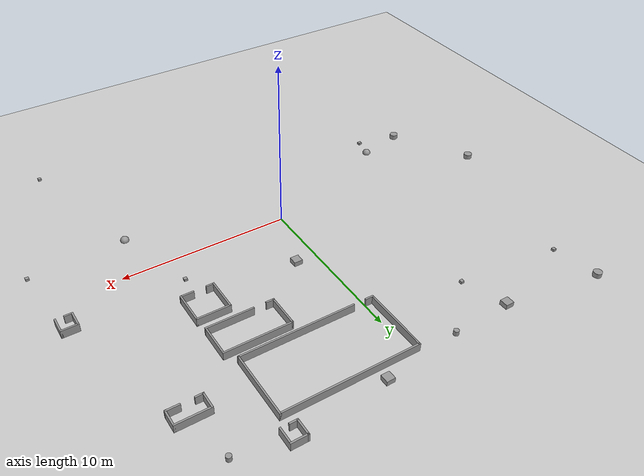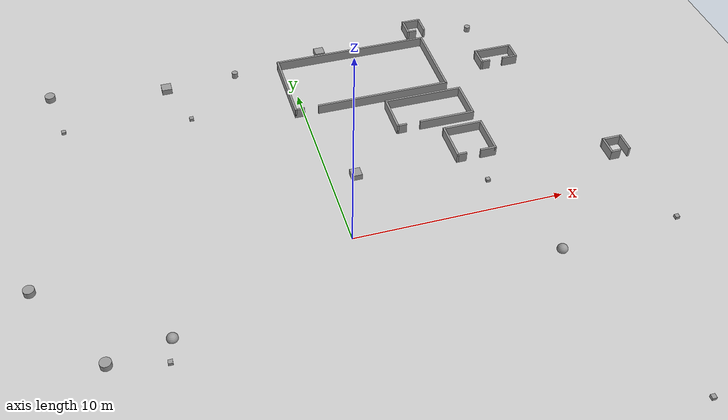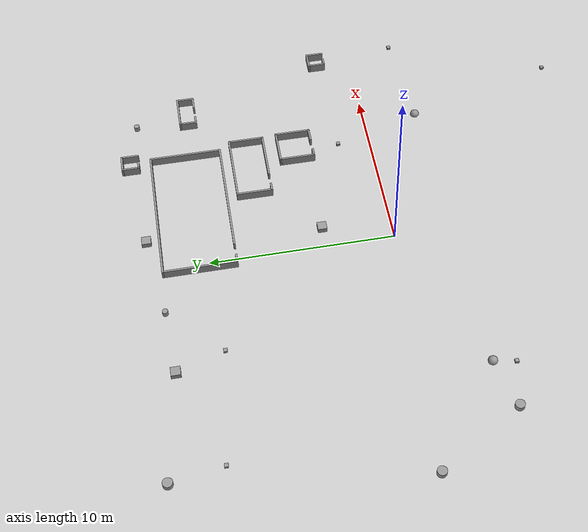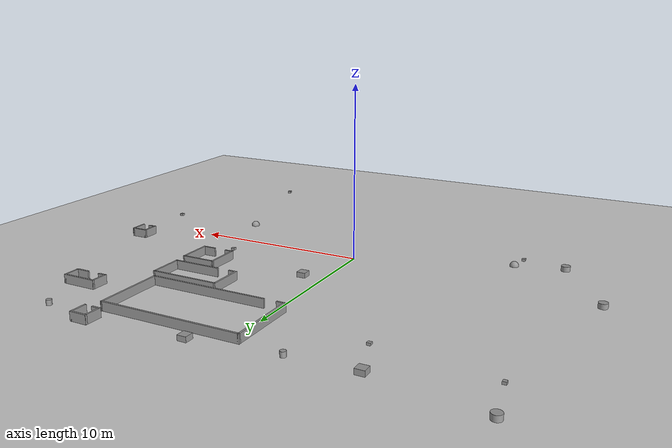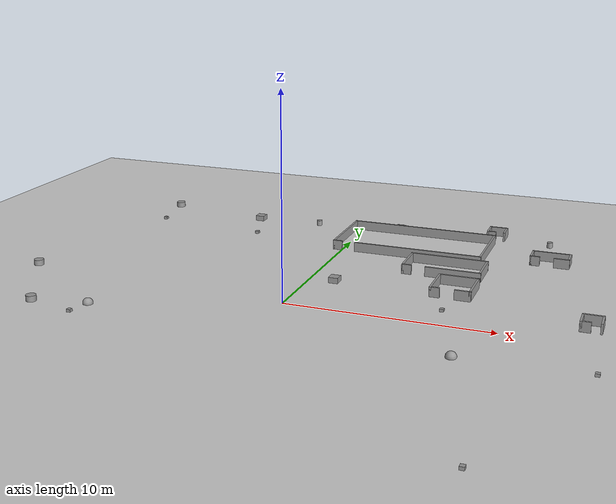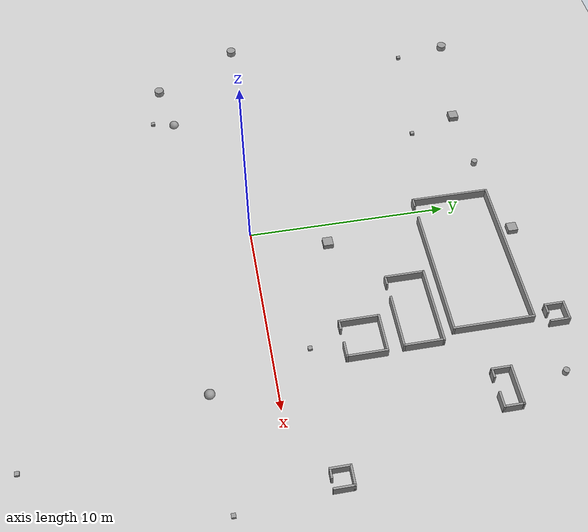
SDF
<sdf version="1.6">
 <world name="default">
  <model name="ground_plane">
   <static>1</static>
   <link name="link">
    <collision name="collision">
     <geometry><plane><normal>0 0 1</normal><size>30 30</size></plane></geometry>
     <surface>
      <contact><collide_bitmask>65535</collide_bitmask></contact>
      <friction><ode><mu>100</mu><mu2>50</mu2></ode></friction>
     </surface>
     <max_contacts>15</max_contacts>
    </collision>
    <visual name="visual">
     <cast_shadows>0</cast_shadows>
     <geometry><plane><normal>0 0 1</normal><size>30 30</size></plane></geometry>
     <material>
      <script><uri>file://media/materials/scripts/gazebo.material</uri><name>Gazebo/Grey</name></script>
     </material>
    </visual>
   </link>
  </model>
  <model name="shape3">
   <pose>3.5 10.5 0 0 -0 0</pose>
   <link name="Wall_11">
    <collision name="Wall_11_Collision">
     <geometry><box><size>4 0.1 0.5</size></box></geometry>
     <pose>0 0 0.25 0 -0 0</pose>
    </collision>
    <visual name="Wall_11_Visual">
     <pose>0 0 0.25 0 -0 0</pose>
     <geometry><box><size>4 0.1 0.5</size></box></geometry>
     <material>
      <script><uri>file://media/materials/scripts/gazebo.material</uri><name>Gazebo/Grey</name></script>
      <ambient>1 1 1 1</ambient>
     </material>
     <meta><layer>0</layer></meta>
    </visual>
    <pose>-3.95 0 0 0 -0 -1.5708</pose>
   </link>
   <link name="Wall_12">
    <collision name="Wall_12_Collision">
     <geometry><box><size>0.5 0.1 0.5</size></box></geometry>
     <pose>0 0 0.25 0 -0 0</pose>
    </collision>
    <visual name="Wall_12_Visual">
     <pose>0 0 0.25 0 -0 0</pose>
     <geometry><box><size>0.5 0.1 0.5</size></box></geometry>
     <material>
      <script><uri>file://media/materials/scripts/gazebo.material</uri><name>Gazebo/Grey</name></script>
      <ambient>1 1 1 1</ambient>
     </material>
     <meta><layer>0</layer></meta>
    </visual>
    <pose>-3.75 -1.95 0 0 -0 0</pose>
   </link>
   <link name="Wall_7">
    <collision name="Wall_7_Collision">
     <geometry><box><size>8 0.1 0.5</size></box></geometry>
     <pose>0 0 0.25 0 -0 0</pose>
    </collision>
    <visual name="Wall_7_Visual">
     <pose>0 0 0.25 0 -0 0</pose>
     <geometry><box><size>8 0.1 0.5</size></box></geometry>
     <material>
      <script><uri>file://media/materials/scripts/gazebo.material</uri><name>Gazebo/Grey</name></script>
      <ambient>1 1 1 1</ambient>
     </material>
     <meta><layer>0</layer></meta>
    </visual>
    <pose>-0 1.95 0 0 -0 0</pose>
   </link>
   <link name="Wall_8">
    <collision name="Wall_8_Collision">
     <geometry><box><size>4 0.1 0.5</size></box></geometry>
     <pose>0 0 0.25 0 -0 0</pose>
    </collision>
    <visual name="Wall_8_Visual">
     <pose>0 0 0.25 0 -0 0</pose>
     <geometry><box><size>4 0.1 0.5</size></box></geometry>
     <material>
      <script><uri>file://media/materials/scripts/gazebo.material</uri><name>Gazebo/Grey</name></script>
      <ambient>1 1 1 1</ambient>
     </material>
     <meta><layer>0</layer></meta>
    </visual>
    <pose>3.95 0 0 0 -0 -1.5708</pose>
   </link>
   <link name="Wall_9">
    <collision name="Wall_9_Collision">
     <geometry><box><size>6.8 0.1 0.5</size></box></geometry>
     <pose>0 0 0.25 0 -0 0</pose>
    </collision>
    <visual name="Wall_9_Visual">
     <pose>0 0 0.25 0 -0 0</pose>
     <geometry><box><size>6.8 0.1 0.5</size></box></geometry>
     <material>
      <script><uri>file://media/materials/scripts/gazebo.material</uri><name>Gazebo/Grey</name></script>
      <ambient>1 1 1 1</ambient>
     </material>
     <meta><layer>0</layer></meta>
    </visual>
    <pose>0.6 -1.95 0 0 -0 3.14159</pose>
   </link>
   <static>1</static>
  </model>
  <model name="shape1">
   <pose>10.8 10.1 0 0 -0 0</pose>
   <link name="Wall_0">
    <collision name="Wall_0_Collision">
     <geometry><box><size>2 0.1 0.5</size></box></geometry>
     <pose>0 0 0.25 0 -0 0</pose>
    </collision>
    <visual name="Wall_0_Visual">
     <pose>0 0 0.25 0 -0 0</pose>
     <geometry><box><size>2 0.1 0.5</size></box></geometry>
     <material>
      <script><uri>file://media/materials/scripts/gazebo.material</uri><name>Gazebo/Grey</name></script>
      <ambient>1 1 1 1</ambient>
     </material>
     <meta><layer>0</layer></meta>
    </visual>
    <pose>0 0.45 0 0 -0 0</pose>
   </link>
   <link name="Wall_1">
    <collision name="Wall_1_Collision">
     <geometry><box><size>1 0.1 0.5</size></box></geometry>
     <pose>0 0 0.25 0 -0 0</pose>
    </collision>
    <visual name="Wall_1_Visual">
     <pose>0 0 0.25 0 -0 0</pose>
     <geometry><box><size>1 0.1 0.5</size></box></geometry>
     <material>
      <script><uri>file://media/materials/scripts/gazebo.material</uri><name>Gazebo/Grey</name></script>
      <ambient>1 1 1 1</ambient>
     </material>
     <meta><layer>0</layer></meta>
    </visual>
    <pose>0.95 -0 0 0 -0 -1.5708</pose>
   </link>
   <link name="Wall_2">
    <collision name="Wall_2_Collision">
     <geometry><box><size>0.8 0.1 0.5</size></box></geometry>
     <pose>0 0 0.25 0 -0 0</pose>
    </collision>
    <visual name="Wall_2_Visual">
     <pose>0 0 0.25 0 -0 0</pose>
     <geometry><box><size>0.8 0.1 0.5</size></box></geometry>
     <material>
      <script><uri>file://media/materials/scripts/gazebo.material</uri><name>Gazebo/Grey</name></script>
      <ambient>1 1 1 1</ambient>
     </material>
     <meta><layer>0</layer></meta>
    </visual>
    <pose>0.6 -0.45 0 0 -0 3.14159</pose>
   </link>
   <link name="Wall_4">
    <collision name="Wall_4_Collision">
     <geometry><box><size>1 0.1 0.5</size></box></geometry>
     <pose>0 0 0.25 0 -0 0</pose>
    </collision>
    <visual name="Wall_4_Visual">
     <pose>0 0 0.25 0 -0 0</pose>
     <geometry><box><size>1 0.1 0.5</size></box></geometry>
     <material>
      <script><uri>file://media/materials/scripts/gazebo.material</uri><name>Gazebo/Grey</name></script>
      <ambient>1 1 1 1</ambient>
     </material>
     <meta><layer>0</layer></meta>
    </visual>
    <pose>-0.95 -0 0 0 -0 -1.5708</pose>
   </link>
   <link name="Wall_5">
    <collision name="Wall_5_Collision">
     <geometry><box><size>0.499474 0.1 0.5</size></box></geometry>
     <pose>0 0 0.25 0 -0 0</pose>
    </collision>
    <visual name="Wall_5_Visual">
     <pose>0 0 0.25 0 -0 0</pose>
     <geometry><box><size>0.499474 0.1 0.5</size></box></geometry>
     <material>
      <script><uri>file://media/materials/scripts/gazebo.material</uri><name>Gazebo/Grey</name></script>
      <ambient>1 1 1 1</ambient>
     </material>
     <meta><layer>0</layer></meta>
    </visual>
    <pose>-0.75 -0.45 0 0 -0 0</pose>
   </link>
   <static>1</static>
  </model>
  <model name="box_d=50">
   <link name="link_2">
    <inertial>
     <mass>1</mass>
     <inertia>
      <ixx>0.166667</ixx>
      <ixy>0</ixy>
      <ixz>0</ixz>
      <iyy>0.166667</iyy>
      <iyz>0</iyz>
      <izz>0.166667</izz>
     </inertia>
    </inertial>
    <pose>-6.35 12.35 0 0 -0 0</pose>
    <visual name="visual">
     <geometry><box><size>0.5 0.5 0.5</size></box></geometry>
     <material>
      <lighting>1</lighting>
      <script><uri>file://media/materials/scripts/gazebo.material</uri><name>Gazebo/Grey</name></script>
      <shader type="vertex"><normal_map>__default__</normal_map></shader>
      <ambient>0.3 0.3 0.3 1</ambient>
      <diffuse>0.7 0.7 0.7 1</diffuse>
      <specular>0.01 0.01 0.01 1</specular>
      <emissive>0 0 0 1</emissive>
     </material>
    </visual>
    <collision name="collision">
     <geometry><box><size>0.5 0.5 0.5</size></box></geometry>
     <surface>
      <friction>
       <ode><mu>1</mu><mu2>1</mu2><fdir1>0 0 0</fdir1><slip1>0</slip1><slip2>0</slip2></ode>
       <torsional>
        <coefficient>1</coefficient>
        <patch_radius>0</patch_radius>
        <surface_radius>0</surface_radius>
        <use_patch_radius>1</use_patch_radius>
        <ode><slip>0</slip></ode>
       </torsional>
      </friction>
      <bounce><restitution_coefficient>0</restitution_coefficient><threshold>1e+06</threshold></bounce>
      <contact>
       <collide_without_contact>0</collide_without_contact>
       <collide_without_contact_bitmask>1</collide_without_contact_bitmask>
       <collide_bitmask>1</collide_bitmask>
       <ode>
        <soft_cfm>0</soft_cfm>
        <soft_erp>0.2</soft_erp>
        <kp>1e+13</kp>
        <kd>1</kd>
        <max_vel>0.01</max_vel>
        <min_depth>0</min_depth>
       </ode>
       <bullet>
        <split_impulse>1</split_impulse>
        <split_impulse_penetration_threshold>-0.01</split_impulse_penetration_threshold>
        <soft_cfm>0</soft_cfm>
        <soft_erp>0.2</soft_erp>
        <kp>1e+13</kp>
        <kd>1</kd>
       </bullet>
      </contact>
     </surface>
    </collision>
   </link>
   <static>0</static>
  </model>
  <model name="ball_d=50">
   <link name="link_1">
    <inertial>
     <mass>1</mass>
     <inertia><ixx>0.1</ixx><ixy>0</ixy><ixz>0</ixz><iyy>0.1</iyy><iyz>0</iyz><izz>0.1</izz></inertia>
    </inertial>
    <pose>8.65 -3.05 0 0 -0 0</pose>
    <visual name="visual">
     <geometry><sphere><radius>0.25</radius></sphere></geometry>
     <material>
      <lighting>1</lighting>
      <script><uri>file://media/materials/scripts/gazebo.material</uri><name>Gazebo/Grey</name></script>
      <shader type="vertex"><normal_map>__default__</normal_map></shader>
      <ambient>0.3 0.3 0.3 1</ambient>
      <diffuse>0.7 0.7 0.7 1</diffuse>
      <specular>0.01 0.01 0.01 1</specular>
      <emissive>0 0 0 1</emissive>
     </material>
    </visual>
    <collision name="collision">
     <geometry><sphere><radius>0.25</radius></sphere></geometry>
     <surface>
      <friction>
       <ode><mu>1</mu><mu2>1</mu2><fdir1>0 0 0</fdir1><slip1>0</slip1><slip2>0</slip2></ode>
       <torsional>
        <coefficient>1</coefficient>
        <patch_radius>0</patch_radius>
        <surface_radius>0</surface_radius>
        <use_patch_radius>1</use_patch_radius>
        <ode><slip>0</slip></ode>
       </torsional>
      </friction>
      <bounce><restitution_coefficient>0</restitution_coefficient><threshold>1e+06</threshold></bounce>
      <contact>
       <collide_without_contact>0</collide_without_contact>
       <collide_without_contact_bitmask>1</collide_without_contact_bitmask>
       <collide_bitmask>1</collide_bitmask>
       <ode>
        <soft_cfm>0</soft_cfm>
        <soft_erp>0.2</soft_erp>
        <kp>1e+13</kp>
        <kd>1</kd>
        <max_vel>0.01</max_vel>
        <min_depth>0</min_depth>
       </ode>
       <bullet>
        <split_impulse>1</split_impulse>
        <split_impulse_penetration_threshold>-0.01</split_impulse_penetration_threshold>
        <soft_cfm>0</soft_cfm>
        <soft_erp>0.2</soft_erp>
        <kp>1e+13</kp>
        <kd>1</kd>
       </bullet>
      </contact>
     </surface>
    </collision>
   </link>
   <static>0</static>
  </model>
  <model name="box_d=20">
   <link name="link_2">
    <inertial>
     <mass>1</mass>
     <inertia>
      <ixx>0.166667</ixx>
      <ixy>0</ixy>
      <ixz>0</ixz>
      <iyy>0.166667</iyy>
      <iyz>0</iyz>
      <izz>0.166667</izz>
     </inertia>
    </inertial>
    <pose>14.4 -2.7 0 0 -0 0</pose>
    <visual name="visual">
     <geometry><box><size>0.2 0.2 0.2</size></box></geometry>
     <material>
      <lighting>1</lighting>
      <script><uri>file://media/materials/scripts/gazebo.material</uri><name>Gazebo/Grey</name></script>
      <shader type="vertex"><normal_map>__default__</normal_map></shader>
      <ambient>0.3 0.3 0.3 1</ambient>
      <diffuse>0.7 0.7 0.7 1</diffuse>
      <specular>0.01 0.01 0.01 1</specular>
      <emissive>0 0 0 1</emissive>
     </material>
    </visual>
    <collision name="collision">
     <geometry><box><size>0.2 0.2 0.2</size></box></geometry>
     <surface>
      <friction>
       <ode><mu>1</mu><mu2>1</mu2><fdir1>0 0 0</fdir1><slip1>0</slip1><slip2>0</slip2></ode>
       <torsional>
        <coefficient>1</coefficient>
        <patch_radius>0</patch_radius>
        <surface_radius>0</surface_radius>
        <use_patch_radius>1</use_patch_radius>
        <ode><slip>0</slip></ode>
       </torsional>
      </friction>
      <bounce><restitution_coefficient>0</restitution_coefficient><threshold>1e+06</threshold></bounce>
      <contact>
       <collide_without_contact>0</collide_without_contact>
       <collide_without_contact_bitmask>1</collide_without_contact_bitmask>
       <collide_bitmask>1</collide_bitmask>
       <ode>
        <soft_cfm>0</soft_cfm>
        <soft_erp>0.2</soft_erp>
        <kp>1e+13</kp>
        <kd>1</kd>
        <max_vel>0.01</max_vel>
        <min_depth>0</min_depth>
       </ode>
       <bullet>
        <split_impulse>1</split_impulse>
        <split_impulse_penetration_threshold>-0.01</split_impulse_penetration_threshold>
        <soft_cfm>0</soft_cfm>
        <soft_erp>0.2</soft_erp>
        <kp>1e+13</kp>
        <kd>1</kd>
       </bullet>
      </contact>
     </surface>
    </collision>
   </link>
   <static>0</static>
  </model>
  <model name="cylinder_d=50">
   <link name="link_0">
    <inertial>
     <mass>1</mass>
     <inertia><ixx>0.145833</ixx><ixy>0</ixy><ixz>0</ixz><iyy>0.145833</iyy><iyz>0</iyz><izz>0.125</izz></inertia>
    </inertial>
    <pose>-11.15 -3.75 0 0 -0 0</pose>
    <visual name="visual">
     <geometry><cylinder><radius>0.25</radius><length>0.5</length></cylinder></geometry>
     <material>
      <lighting>1</lighting>
      <script><uri>file://media/materials/scripts/gazebo.material</uri><name>Gazebo/Grey</name></script>
      <shader type="vertex"><normal_map>__default__</normal_map></shader>
      <ambient>0.3 0.3 0.3 1</ambient>
      <diffuse>0.7 0.7 0.7 1</diffuse>
      <specular>0.01 0.01 0.01 1</specular>
      <emissive>0 0 0 1</emissive>
     </material>
    </visual>
    <collision name="collision">
     <geometry><cylinder><radius>0.25</radius><length>0.5</length></cylinder></geometry>
     <surface>
      <friction>
       <ode><mu>1</mu><mu2>1</mu2><fdir1>0 0 0</fdir1><slip1>0</slip1><slip2>0</slip2></ode>
       <torsional>
        <coefficient>1</coefficient>
        <patch_radius>0</patch_radius>
        <surface_radius>0</surface_radius>
        <use_patch_radius>1</use_patch_radius>
        <ode><slip>0</slip></ode>
       </torsional>
      </friction>
      <bounce><restitution_coefficient>0</restitution_coefficient><threshold>1e+06</threshold></bounce>
      <contact>
       <collide_without_contact>0</collide_without_contact>
       <collide_without_contact_bitmask>1</collide_without_contact_bitmask>
       <collide_bitmask>1</collide_bitmask>
       <ode>
        <soft_cfm>0</soft_cfm>
        <soft_erp>0.2</soft_erp>
        <kp>1e+13</kp>
        <kd>1</kd>
        <max_vel>0.01</max_vel>
        <min_depth>0</min_depth>
       </ode>
       <bullet>
        <split_impulse>1</split_impulse>
        <split_impulse_penetration_threshold>-0.01</split_impulse_penetration_threshold>
        <soft_cfm>0</soft_cfm>
        <soft_erp>0.2</soft_erp>
        <kp>1e+13</kp>
        <kd>1</kd>
       </bullet>
      </contact>
     </surface>
    </collision>
   </link>
   <static>0</static>
  </model>
  <model name="cylinder_d=30">
   <link name="link_0">
    <inertial>
     <mass>1</mass>
     <inertia><ixx>0.145833</ixx><ixy>0</ixy><ixz>0</ixz><iyy>0.145833</iyy><iyz>0</iyz><izz>0.125</izz></inertia>
    </inertial>
    <pose>10.35 13.05 0 0 -0 0</pose>
    <visual name="visual">
     <geometry><cylinder><radius>0.15</radius><length>0.5</length></cylinder></geometry>
     <material>
      <lighting>1</lighting>
      <script><uri>file://media/materials/scripts/gazebo.material</uri><name>Gazebo/Grey</name></script>
      <shader type="vertex"><normal_map>__default__</normal_map></shader>
      <ambient>0.3 0.3 0.3 1</ambient>
      <diffuse>0.7 0.7 0.7 1</diffuse>
      <specular>0.01 0.01 0.01 1</specular>
      <emissive>0 0 0 1</emissive>
     </material>
    </visual>
    <collision name="collision">
     <geometry><cylinder><radius>0.15</radius><length>0.5</length></cylinder></geometry>
     <surface>
      <friction>
       <ode><mu>1</mu><mu2>1</mu2><fdir1>0 0 0</fdir1><slip1>0</slip1><slip2>0</slip2></ode>
       <torsional>
        <coefficient>1</coefficient>
        <patch_radius>0</patch_radius>
        <surface_radius>0</surface_radius>
        <use_patch_radius>1</use_patch_radius>
        <ode><slip>0</slip></ode>
       </torsional>
      </friction>
      <bounce><restitution_coefficient>0</restitution_coefficient><threshold>1e+06</threshold></bounce>
      <contact>
       <collide_without_contact>0</collide_without_contact>
       <collide_without_contact_bitmask>1</collide_without_contact_bitmask>
       <collide_bitmask>1</collide_bitmask>
       <ode>
        <soft_cfm>0</soft_cfm>
        <soft_erp>0.2</soft_erp>
        <kp>1e+13</kp>
        <kd>1</kd>
        <max_vel>0.01</max_vel>
        <min_depth>0</min_depth>
       </ode>
       <bullet>
        <split_impulse>1</split_impulse>
        <split_impulse_penetration_threshold>-0.01</split_impulse_penetration_threshold>
        <soft_cfm>0</soft_cfm>
        <soft_erp>0.2</soft_erp>
        <kp>1e+13</kp>
        <kd>1</kd>
       </bullet>
      </contact>
     </surface>
    </collision>
   </link>
   <static>0</static>
  </model>
  <model name="box_d=20">
   <link name="link_2">
    <inertial>
     <mass>1</mass>
     <inertia>
      <ixx>0.166667</ixx>
      <ixy>0</ixy>
      <ixz>0</ixz>
      <iyy>0.166667</iyy>
      <iyz>0</iyz>
      <izz>0.166667</izz>
     </inertia>
    </inertial>
    <pose>-11.7 10.5 0 0 -0 0</pose>
    <visual name="visual">
     <geometry><box><size>0.2 0.2 0.2</size></box></geometry>
     <material>
      <lighting>1</lighting>
      <script><uri>file://media/materials/scripts/gazebo.material</uri><name>Gazebo/Grey</name></script>
      <shader type="vertex"><normal_map>__default__</normal_map></shader>
      <ambient>0.3 0.3 0.3 1</ambient>
      <diffuse>0.7 0.7 0.7 1</diffuse>
      <specular>0.01 0.01 0.01 1</specular>
      <emissive>0 0 0 1</emissive>
     </material>
    </visual>
    <collision name="collision">
     <geometry><box><size>0.2 0.2 0.2</size></box></geometry>
     <surface>
      <friction>
       <ode><mu>1</mu><mu2>1</mu2><fdir1>0 0 0</fdir1><slip1>0</slip1><slip2>0</slip2></ode>
       <torsional>
        <coefficient>1</coefficient>
        <patch_radius>0</patch_radius>
        <surface_radius>0</surface_radius>
        <use_patch_radius>1</use_patch_radius>
        <ode><slip>0</slip></ode>
       </torsional>
      </friction>
      <bounce><restitution_coefficient>0</restitution_coefficient><threshold>1e+06</threshold></bounce>
      <contact>
       <collide_without_contact>0</collide_without_contact>
       <collide_without_contact_bitmask>1</collide_without_contact_bitmask>
       <collide_bitmask>1</collide_bitmask>
       <ode>
        <soft_cfm>0</soft_cfm>
        <soft_erp>0.2</soft_erp>
        <kp>1e+13</kp>
        <kd>1</kd>
        <max_vel>0.01</max_vel>
        <min_depth>0</min_depth>
       </ode>
       <bullet>
        <split_impulse>1</split_impulse>
        <split_impulse_penetration_threshold>-0.01</split_impulse_penetration_threshold>
        <soft_cfm>0</soft_cfm>
        <soft_erp>0.2</soft_erp>
        <kp>1e+13</kp>
        <kd>1</kd>
       </bullet>
      </contact>
     </surface>
    </collision>
   </link>
   <static>0</static>
  </model>
  <model name="cylinder_d=50">
   <link name="link_0">
    <inertial>
     <mass>1</mass>
     <inertia><ixx>0.145833</ixx><ixy>0</ixy><ixz>0</ixz><iyy>0.145833</iyy><iyz>0</iyz><izz>0.125</izz></inertia>
    </inertial>
    <pose>-13.85 0.75 0 0 -0 0</pose>
    <visual name="visual">
     <geometry><cylinder><radius>0.25</radius><length>0.5</length></cylinder></geometry>
     <material>
      <lighting>1</lighting>
      <script><uri>file://media/materials/scripts/gazebo.material</uri><name>Gazebo/Grey</name></script>
      <shader type="vertex"><normal_map>__default__</normal_map></shader>
      <ambient>0.3 0.3 0.3 1</ambient>
      <diffuse>0.7 0.7 0.7 1</diffuse>
      <specular>0.01 0.01 0.01 1</specular>
      <emissive>0 0 0 1</emissive>
     </material>
    </visual>
    <collision name="collision">
     <geometry><cylinder><radius>0.25</radius><length>0.5</length></cylinder></geometry>
     <surface>
      <friction>
       <ode><mu>1</mu><mu2>1</mu2><fdir1>0 0 0</fdir1><slip1>0</slip1><slip2>0</slip2></ode>
       <torsional>
        <coefficient>1</coefficient>
        <patch_radius>0</patch_radius>
        <surface_radius>0</surface_radius>
        <use_patch_radius>1</use_patch_radius>
        <ode><slip>0</slip></ode>
       </torsional>
      </friction>
      <bounce><restitution_coefficient>0</restitution_coefficient><threshold>1e+06</threshold></bounce>
      <contact>
       <collide_without_contact>0</collide_without_contact>
       <collide_without_contact_bitmask>1</collide_without_contact_bitmask>
       <collide_bitmask>1</collide_bitmask>
       <ode>
        <soft_cfm>0</soft_cfm>
        <soft_erp>0.2</soft_erp>
        <kp>1e+13</kp>
        <kd>1</kd>
        <max_vel>0.01</max_vel>
        <min_depth>0</min_depth>
       </ode>
       <bullet>
        <split_impulse>1</split_impulse>
        <split_impulse_penetration_threshold>-0.01</split_impulse_penetration_threshold>
        <soft_cfm>0</soft_cfm>
        <soft_erp>0.2</soft_erp>
        <kp>1e+13</kp>
        <kd>1</kd>
       </bullet>
      </contact>
     </surface>
    </collision>
   </link>
   <static>0</static>
  </model>
  <model name="box_d=20">
   <link name="link_2">
    <inertial>
     <mass>1</mass>
     <inertia>
      <ixx>0.166667</ixx>
      <ixy>0</ixy>
      <ixz>0</ixz>
      <iyy>0.166667</iyy>
      <iyz>0</iyz>
      <izz>0.166667</izz>
     </inertia>
    </inertial>
    <pose>-8.7 -4.3 0 0 -0 0</pose>
    <visual name="visual">
     <geometry><box><size>0.2 0.2 0.2</size></box></geometry>
     <material>
      <lighting>1</lighting>
      <script><uri>file://media/materials/scripts/gazebo.material</uri><name>Gazebo/Grey</name></script>
      <shader type="vertex"><normal_map>__default__</normal_map></shader>
      <ambient>0.3 0.3 0.3 1</ambient>
      <diffuse>0.7 0.7 0.7 1</diffuse>
      <specular>0.01 0.01 0.01 1</specular>
      <emissive>0 0 0 1</emissive>
     </material>
    </visual>
    <collision name="collision">
     <geometry><box><size>0.2 0.2 0.2</size></box></geometry>
     <surface>
      <friction>
       <ode><mu>1</mu><mu2>1</mu2><fdir1>0 0 0</fdir1><slip1>0</slip1><slip2>0</slip2></ode>
       <torsional>
        <coefficient>1</coefficient>
        <patch_radius>0</patch_radius>
        <surface_radius>0</surface_radius>
        <use_patch_radius>1</use_patch_radius>
        <ode><slip>0</slip></ode>
       </torsional>
      </friction>
      <bounce><restitution_coefficient>0</restitution_coefficient><threshold>1e+06</threshold></bounce>
      <contact>
       <collide_without_contact>0</collide_without_contact>
       <collide_without_contact_bitmask>1</collide_without_contact_bitmask>
       <collide_bitmask>1</collide_bitmask>
       <ode>
        <soft_cfm>0</soft_cfm>
        <soft_erp>0.2</soft_erp>
        <kp>1e+13</kp>
        <kd>1</kd>
        <max_vel>0.01</max_vel>
        <min_depth>0</min_depth>
       </ode>
       <bullet>
        <split_impulse>1</split_impulse>
        <split_impulse_penetration_threshold>-0.01</split_impulse_penetration_threshold>
        <soft_cfm>0</soft_cfm>
        <soft_erp>0.2</soft_erp>
        <kp>1e+13</kp>
        <kd>1</kd>
       </bullet>
      </contact>
     </surface>
    </collision>
   </link>
   <static>0</static>
  </model>
  <model name="shape5">
   <pose>7.1 4.3 0 0 -0 0</pose>
   <link name="Wall_20">
    <collision name="Wall_20_Collision">
     <geometry><box><size>2 0.1 0.5</size></box></geometry>
     <pose>0 0 0.25 0 -0 0</pose>
    </collision>
    <visual name="Wall_20_Visual">
     <pose>0 0 0.25 0 -0 0</pose>
     <geometry><box><size>2 0.1 0.5</size></box></geometry>
     <material>
      <script><uri>file://media/materials/scripts/gazebo.material</uri><name>Gazebo/Grey</name></script>
      <ambient>1 1 1 1</ambient>
     </material>
     <meta><layer>0</layer></meta>
    </visual>
    <pose>-0 0.95 0 0 -0 0</pose>
   </link>
   <link name="Wall_21">
    <collision name="Wall_21_Collision">
     <geometry><box><size>2 0.1 0.5</size></box></geometry>
     <pose>0 0 0.25 0 -0 0</pose>
    </collision>
    <visual name="Wall_21_Visual">
     <pose>0 0 0.25 0 -0 0</pose>
     <geometry><box><size>2 0.1 0.5</size></box></geometry>
     <material>
      <script><uri>file://media/materials/scripts/gazebo.material</uri><name>Gazebo/Grey</name></script>
      <ambient>1 1 1 1</ambient>
     </material>
     <meta><layer>0</layer></meta>
    </visual>
    <pose>0.95 0 0 0 -0 -1.5708</pose>
   </link>
   <link name="Wall_22">
    <collision name="Wall_22_Collision">
     <geometry><box><size>0.8 0.1 0.5</size></box></geometry>
     <pose>0 0 0.25 0 -0 0</pose>
    </collision>
    <visual name="Wall_22_Visual">
     <pose>0 0 0.25 0 -0 0</pose>
     <geometry><box><size>0.8 0.1 0.5</size></box></geometry>
     <material>
      <script><uri>file://media/materials/scripts/gazebo.material</uri><name>Gazebo/Grey</name></script>
      <ambient>1 1 1 1</ambient>
     </material>
     <meta><layer>0</layer></meta>
    </visual>
    <pose>0.6 -0.95 0 0 -0 3.14159</pose>
   </link>
   <link name="Wall_24">
    <collision name="Wall_24_Collision">
     <geometry><box><size>2 0.1 0.5</size></box></geometry>
     <pose>0 0 0.25 0 -0 0</pose>
    </collision>
    <visual name="Wall_24_Visual">
     <pose>0 0 0.25 0 -0 0</pose>
     <geometry><box><size>2 0.1 0.5</size></box></geometry>
     <material>
      <script><uri>file://media/materials/scripts/gazebo.material</uri><name>Gazebo/Grey</name></script>
      <ambient>1 1 1 1</ambient>
     </material>
     <meta><layer>0</layer></meta>
    </visual>
    <pose>-0.95 0 0 0 -0 -1.5708</pose>
   </link>
   <link name="Wall_25">
    <collision name="Wall_25_Collision">
     <geometry><box><size>0.5 0.1 0.5</size></box></geometry>
     <pose>0 0 0.25 0 -0 0</pose>
    </collision>
    <visual name="Wall_25_Visual">
     <pose>0 0 0.25 0 -0 0</pose>
     <geometry><box><size>0.5 0.1 0.5</size></box></geometry>
     <material>
      <script><uri>file://media/materials/scripts/gazebo.material</uri><name>Gazebo/Grey</name></script>
      <ambient>1 1 1 1</ambient>
     </material>
     <meta><layer>0</layer></meta>
    </visual>
    <pose>-0.75 -0.95 0 0 -0 0</pose>
   </link>
   <static>1</static>
  </model>
  <model name="box_d=50">
   <link name="link_2">
    <inertial>
     <mass>1</mass>
     <inertia>
      <ixx>0.166667</ixx>
      <ixy>0</ixy>
      <ixz>0</ixz>
      <iyy>0.166667</iyy>
      <iyz>0</iyz>
      <izz>0.166667</izz>
     </inertia>
    </inertial>
    <pose>1.95 13.15 0 0 -0 0</pose>
    <visual name="visual">
     <geometry><box><size>0.5 0.5 0.5</size></box></geometry>
     <material>
      <lighting>1</lighting>
      <script><uri>file://media/materials/scripts/gazebo.material</uri><name>Gazebo/Grey</name></script>
      <shader type="vertex"><normal_map>__default__</normal_map></shader>
      <ambient>0.3 0.3 0.3 1</ambient>
      <diffuse>0.7 0.7 0.7 1</diffuse>
      <specular>0.01 0.01 0.01 1</specular>
      <emissive>0 0 0 1</emissive>
     </material>
    </visual>
    <collision name="collision">
     <geometry><box><size>0.5 0.5 0.5</size></box></geometry>
     <surface>
      <friction>
       <ode><mu>1</mu><mu2>1</mu2><fdir1>0 0 0</fdir1><slip1>0</slip1><slip2>0</slip2></ode>
       <torsional>
        <coefficient>1</coefficient>
        <patch_radius>0</patch_radius>
        <surface_radius>0</surface_radius>
        <use_patch_radius>1</use_patch_radius>
        <ode><slip>0</slip></ode>
       </torsional>
      </friction>
      <bounce><restitution_coefficient>0</restitution_coefficient><threshold>1e+06</threshold></bounce>
      <contact>
       <collide_without_contact>0</collide_without_contact>
       <collide_without_contact_bitmask>1</collide_without_contact_bitmask>
       <collide_bitmask>1</collide_bitmask>
       <ode>
        <soft_cfm>0</soft_cfm>
        <soft_erp>0.2</soft_erp>
        <kp>1e+13</kp>
        <kd>1</kd>
        <max_vel>0.01</max_vel>
        <min_depth>0</min_depth>
       </ode>
       <bullet>
        <split_impulse>1</split_impulse>
        <split_impulse_penetration_threshold>-0.01</split_impulse_penetration_threshold>
        <soft_cfm>0</soft_cfm>
        <soft_erp>0.2</soft_erp>
        <kp>1e+13</kp>
        <kd>1</kd>
       </bullet>
      </contact>
     </surface>
    </collision>
   </link>
   <static>0</static>
  </model>
  <model name="ball_d=50">
   <link name="link_1">
    <inertial>
     <mass>1</mass>
     <inertia><ixx>0.1</ixx><ixy>0</ixy><ixz>0</ixz><iyy>0.1</iyy><iyz>0</iyz><izz>0.1</izz></inertia>
    </inertial>
    <pose>-8.45 -3.15 0 0 -0 0</pose>
    <visual name="visual">
     <geometry><sphere><radius>0.25</radius></sphere></geometry>
     <material>
      <lighting>1</lighting>
      <script><uri>file://media/materials/scripts/gazebo.material</uri><name>Gazebo/Grey</name></script>
      <shader type="vertex"><normal_map>__default__</normal_map></shader>
      <ambient>0.3 0.3 0.3 1</ambient>
      <diffuse>0.7 0.7 0.7 1</diffuse>
      <specular>0.01 0.01 0.01 1</specular>
      <emissive>0 0 0 1</emissive>
     </material>
    </visual>
    <collision name="collision">
     <geometry><sphere><radius>0.25</radius></sphere></geometry>
     <surface>
      <friction>
       <ode><mu>1</mu><mu2>1</mu2><fdir1>0 0 0</fdir1><slip1>0</slip1><slip2>0</slip2></ode>
       <torsional>
        <coefficient>1</coefficient>
        <patch_radius>0</patch_radius>
        <surface_radius>0</surface_radius>
        <use_patch_radius>1</use_patch_radius>
        <ode><slip>0</slip></ode>
       </torsional>
      </friction>
      <bounce><restitution_coefficient>0</restitution_coefficient><threshold>1e+06</threshold></bounce>
      <contact>
       <collide_without_contact>0</collide_without_contact>
       <collide_without_contact_bitmask>1</collide_without_contact_bitmask>
       <collide_bitmask>1</collide_bitmask>
       <ode>
        <soft_cfm>0</soft_cfm>
        <soft_erp>0.2</soft_erp>
        <kp>1e+13</kp>
        <kd>1</kd>
        <max_vel>0.01</max_vel>
        <min_depth>0</min_depth>
       </ode>
       <bullet>
        <split_impulse>1</split_impulse>
        <split_impulse_penetration_threshold>-0.01</split_impulse_penetration_threshold>
        <soft_cfm>0</soft_cfm>
        <soft_erp>0.2</soft_erp>
        <kp>1e+13</kp>
        <kd>1</kd>
       </bullet>
      </contact>
     </surface>
    </collision>
   </link>
   <static>0</static>
  </model>
  <model name="box_d=50">
   <link name="link_2">
    <inertial>
     <mass>1</mass>
     <inertia>
      <ixx>0.166667</ixx>
      <ixy>0</ixy>
      <ixz>0</ixz>
      <iyy>0.166667</iyy>
      <iyz>0</iyz>
      <izz>0.166667</izz>
     </inertia>
    </inertial>
    <pose>1.25 3.75 0 0 -0 0</pose>
    <visual name="visual">
     <geometry><box><size>0.5 0.5 0.5</size></box></geometry>
     <material>
      <lighting>1</lighting>
      <script><uri>file://media/materials/scripts/gazebo.material</uri><name>Gazebo/Grey</name></script>
      <shader type="vertex"><normal_map>__default__</normal_map></shader>
      <ambient>0.3 0.3 0.3 1</ambient>
      <diffuse>0.7 0.7 0.7 1</diffuse>
      <specular>0.01 0.01 0.01 1</specular>
      <emissive>0 0 0 1</emissive>
     </material>
    </visual>
    <collision name="collision">
     <geometry><box><size>0.5 0.5 0.5</size></box></geometry>
     <surface>
      <friction>
       <ode><mu>1</mu><mu2>1</mu2><fdir1>0 0 0</fdir1><slip1>0</slip1><slip2>0</slip2></ode>
       <torsional>
        <coefficient>1</coefficient>
        <patch_radius>0</patch_radius>
        <surface_radius>0</surface_radius>
        <use_patch_radius>1</use_patch_radius>
        <ode><slip>0</slip></ode>
       </torsional>
      </friction>
      <bounce><restitution_coefficient>0</restitution_coefficient><threshold>1e+06</threshold></bounce>
      <contact>
       <collide_without_contact>0</collide_without_contact>
       <collide_without_contact_bitmask>1</collide_without_contact_bitmask>
       <collide_bitmask>1</collide_bitmask>
       <ode>
        <soft_cfm>0</soft_cfm>
        <soft_erp>0.2</soft_erp>
        <kp>1e+13</kp>
        <kd>1</kd>
        <max_vel>0.01</max_vel>
        <min_depth>0</min_depth>
       </ode>
       <bullet>
        <split_impulse>1</split_impulse>
        <split_impulse_penetration_threshold>-0.01</split_impulse_penetration_threshold>
        <soft_cfm>0</soft_cfm>
        <soft_erp>0.2</soft_erp>
        <kp>1e+13</kp>
        <kd>1</kd>
       </bullet>
      </contact>
     </surface>
    </collision>
   </link>
   <static>0</static>
  </model>
  <model name="shape4">
   <pose>13.7 2 0 0 -0 0</pose>
   <link name="Wall_14">
    <collision name="Wall_14_Collision">
     <geometry><box><size>1 0.1 0.5</size></box></geometry>
     <pose>0 0 0.25 0 -0 0</pose>
    </collision>
    <visual name="Wall_14_Visual">
     <pose>0 0 0.25 0 -0 0</pose>
     <geometry><box><size>1 0.1 0.5</size></box></geometry>
     <material>
      <script><uri>file://media/materials/scripts/gazebo.material</uri><name>Gazebo/Grey</name></script>
      <ambient>1 1 1 1</ambient>
     </material>
     <meta><layer>0</layer></meta>
    </visual>
    <pose>-0 0.45 0 0 -0 0</pose>
   </link>
   <link name="Wall_15">
    <collision name="Wall_15_Collision">
     <geometry><box><size>1 0.1 0.5</size></box></geometry>
     <pose>0 0 0.25 0 -0 0</pose>
    </collision>
    <visual name="Wall_15_Visual">
     <pose>0 0 0.25 0 -0 0</pose>
     <geometry><box><size>1 0.1 0.5</size></box></geometry>
     <material>
      <script><uri>file://media/materials/scripts/gazebo.material</uri><name>Gazebo/Grey</name></script>
      <ambient>1 1 1 1</ambient>
     </material>
     <meta><layer>0</layer></meta>
    </visual>
    <pose>0.45 -0 0 0 -0 -1.5708</pose>
   </link>
   <link name="Wall_17">
    <collision name="Wall_17_Collision">
     <geometry><box><size>1 0.1 0.5</size></box></geometry>
     <pose>0 0 0.25 0 -0 0</pose>
    </collision>
    <visual name="Wall_17_Visual">
     <pose>0 0 0.25 0 -0 0</pose>
     <geometry><box><size>1 0.1 0.5</size></box></geometry>
     <material>
      <script><uri>file://media/materials/scripts/gazebo.material</uri><name>Gazebo/Grey</name></script>
      <ambient>1 1 1 1</ambient>
     </material>
     <meta><layer>0</layer></meta>
    </visual>
    <pose>-0.45 -0 0 0 -0 -1.5708</pose>
   </link>
   <link name="Wall_18">
    <collision name="Wall_18_Collision">
     <geometry><box><size>0.5 0.1 0.5</size></box></geometry>
     <pose>0 0 0.25 0 -0 0</pose>
    </collision>
    <visual name="Wall_18_Visual">
     <pose>0 0 0.25 0 -0 0</pose>
     <geometry><box><size>0.5 0.1 0.5</size></box></geometry>
     <material>
      <script><uri>file://media/materials/scripts/gazebo.material</uri><name>Gazebo/Grey</name></script>
      <ambient>1 1 1 1</ambient>
     </material>
     <meta><layer>0</layer></meta>
    </visual>
    <pose>-0.25 -0.45 0 0 -0 0</pose>
   </link>
   <static>1</static>
  </model>
  <model name="shape2">
   <pose>6 7 0 0 -0 0</pose>
   <link name="Wall_0">
    <collision name="Wall_0_Collision">
     <geometry><box><size>3.98685 0.1 0.5</size></box></geometry>
     <pose>0 0 0.25 0 -0 0</pose>
    </collision>
    <visual name="Wall_0_Visual">
     <pose>0 0 0.25 0 -0 0</pose>
     <geometry><box><size>3.98685 0.1 0.5</size></box></geometry>
     <material>
      <script><uri>file://media/materials/scripts/gazebo.material</uri><name>Gazebo/Grey</name></script>
      <ambient>1 1 1 1</ambient>
     </material>
     <meta><layer>0</layer></meta>
    </visual>
    <pose>0.003288 0.95 0 0 -0 0</pose>
   </link>
   <link name="Wall_1">
    <collision name="Wall_1_Collision">
     <geometry><box><size>2 0.1 0.5</size></box></geometry>
     <pose>0 0 0.25 0 -0 0</pose>
    </collision>
    <visual name="Wall_1_Visual">
     <pose>0 0 0.25 0 -0 0</pose>
     <geometry><box><size>2 0.1 0.5</size></box></geometry>
     <material>
      <script><uri>file://media/materials/scripts/gazebo.material</uri><name>Gazebo/Grey</name></script>
      <ambient>1 1 1 1</ambient>
     </material>
     <meta><layer>0</layer></meta>
    </visual>
    <pose>1.94671 0 0 0 -0 -1.5708</pose>
   </link>
   <link name="Wall_2">
    <collision name="Wall_2_Collision">
     <geometry><box><size>2.8 0.1 0.5</size></box></geometry>
     <pose>0 0 0.25 0 -0 0</pose>
    </collision>
    <visual name="Wall_2_Visual">
     <pose>0 0 0.25 0 -0 0</pose>
     <geometry><box><size>2.8 0.1 0.5</size></box></geometry>
     <material>
      <script><uri>file://media/materials/scripts/gazebo.material</uri><name>Gazebo/Grey</name></script>
      <ambient>1 1 1 1</ambient>
     </material>
     <meta><layer>0</layer></meta>
    </visual>
    <pose>0.596712 -0.95 0 0 -0 3.14159</pose>
   </link>
   <link name="Wall_4">
    <collision name="Wall_4_Collision">
     <geometry><box><size>2 0.1 0.5</size></box></geometry>
     <pose>0 0 0.25 0 -0 0</pose>
    </collision>
    <visual name="Wall_4_Visual">
     <pose>0 0 0.25 0 -0 0</pose>
     <geometry><box><size>2 0.1 0.5</size></box></geometry>
     <material>
      <script><uri>file://media/materials/scripts/gazebo.material</uri><name>Gazebo/Grey</name></script>
      <ambient>1 1 1 1</ambient>
     </material>
     <meta><layer>0</layer></meta>
    </visual>
    <pose>-1.94671 0 0 0 -0 -1.5708</pose>
   </link>
   <link name="Wall_5">
    <collision name="Wall_5_Collision">
     <geometry><box><size>0.5 0.1 0.5</size></box></geometry>
     <pose>0 0 0.25 0 -0 0</pose>
    </collision>
    <visual name="Wall_5_Visual">
     <pose>0 0 0.25 0 -0 0</pose>
     <geometry><box><size>0.5 0.1 0.5</size></box></geometry>
     <material>
      <script><uri>file://media/materials/scripts/gazebo.material</uri><name>Gazebo/Grey</name></script>
      <ambient>1 1 1 1</ambient>
     </material>
     <meta><layer>0</layer></meta>
    </visual>
    <pose>-1.74671 -0.95 0 0 -0 0</pose>
   </link>
   <static>1</static>
  </model>
  <model name="box_d=20">
   <link name="link_2">
    <inertial>
     <mass>1</mass>
     <inertia>
      <ixx>0.166667</ixx>
      <ixy>0</ixy>
      <ixz>0</ixz>
      <iyy>0.166667</iyy>
      <iyz>0</iyz>
      <izz>0.166667</izz>
     </inertia>
    </inertial>
    <pose>7.1 1.8 0 0 -0 0</pose>
    <visual name="visual">
     <geometry><box><size>0.2 0.2 0.2</size></box></geometry>
     <material>
      <lighting>1</lighting>
      <script><uri>file://media/materials/scripts/gazebo.material</uri><name>Gazebo/Grey</name></script>
      <shader type="vertex"><normal_map>__default__</normal_map></shader>
      <ambient>0.3 0.3 0.3 1</ambient>
      <diffuse>0.7 0.7 0.7 1</diffuse>
      <specular>0.01 0.01 0.01 1</specular>
      <emissive>0 0 0 1</emissive>
     </material>
    </visual>
    <collision name="collision">
     <geometry><box><size>0.2 0.2 0.2</size></box></geometry>
     <surface>
      <friction>
       <ode><mu>1</mu><mu2>1</mu2><fdir1>0 0 0</fdir1><slip1>0</slip1><slip2>0</slip2></ode>
       <torsional>
        <coefficient>1</coefficient>
        <patch_radius>0</patch_radius>
        <surface_radius>0</surface_radius>
        <use_patch_radius>1</use_patch_radius>
        <ode><slip>0</slip></ode>
       </torsional>
      </friction>
      <bounce><restitution_coefficient>0</restitution_coefficient><threshold>1e+06</threshold></bounce>
      <contact>
       <collide_without_contact>0</collide_without_contact>
       <collide_without_contact_bitmask>1</collide_without_contact_bitmask>
       <collide_bitmask>1</collide_bitmask>
       <ode>
        <soft_cfm>0</soft_cfm>
        <soft_erp>0.2</soft_erp>
        <kp>1e+13</kp>
        <kd>1</kd>
        <max_vel>0.01</max_vel>
        <min_depth>0</min_depth>
       </ode>
       <bullet>
        <split_impulse>1</split_impulse>
        <split_impulse_penetration_threshold>-0.01</split_impulse_penetration_threshold>
        <soft_cfm>0</soft_cfm>
        <soft_erp>0.2</soft_erp>
        <kp>1e+13</kp>
        <kd>1</kd>
       </bullet>
      </contact>
     </surface>
    </collision>
   </link>
   <static>0</static>
  </model>
  <model name="box_d=20">
   <link name="link_2">
    <inertial>
     <mass>1</mass>
     <inertia>
      <ixx>0.166667</ixx>
      <ixy>0</ixy>
      <ixz>0</ixz>
      <iyy>0.166667</iyy>
      <iyz>0</iyz>
      <izz>0.166667</izz>
     </inertia>
    </inertial>
    <pose>11 -11.5 0 0 -0 0</pose>
    <visual name="visual">
     <geometry><box><size>0.2 0.2 0.2</size></box></geometry>
     <material>
      <lighting>1</lighting>
      <script><uri>file://media/materials/scripts/gazebo.material</uri><name>Gazebo/Grey</name></script>
      <shader type="vertex"><normal_map>__default__</normal_map></shader>
      <ambient>0.3 0.3 0.3 1</ambient>
      <diffuse>0.7 0.7 0.7 1</diffuse>
      <specular>0.01 0.01 0.01 1</specular>
      <emissive>0 0 0 1</emissive>
     </material>
    </visual>
    <collision name="collision">
     <geometry><box><size>0.2 0.2 0.2</size></box></geometry>
     <surface>
      <friction>
       <ode><mu>1</mu><mu2>1</mu2><fdir1>0 0 0</fdir1><slip1>0</slip1><slip2>0</slip2></ode>
       <torsional>
        <coefficient>1</coefficient>
        <patch_radius>0</patch_radius>
        <surface_radius>0</surface_radius>
        <use_patch_radius>1</use_patch_radius>
        <ode><slip>0</slip></ode>
       </torsional>
      </friction>
      <bounce><restitution_coefficient>0</restitution_coefficient><threshold>1e+06</threshold></bounce>
      <contact>
       <collide_without_contact>0</collide_without_contact>
       <collide_without_contact_bitmask>1</collide_without_contact_bitmask>
       <collide_bitmask>1</collide_bitmask>
       <ode>
        <soft_cfm>0</soft_cfm>
        <soft_erp>0.2</soft_erp>
        <kp>1e+13</kp>
        <kd>1</kd>
        <max_vel>0.01</max_vel>
        <min_depth>0</min_depth>
       </ode>
       <bullet>
        <split_impulse>1</split_impulse>
        <split_impulse_penetration_threshold>-0.01</split_impulse_penetration_threshold>
        <soft_cfm>0</soft_cfm>
        <soft_erp>0.2</soft_erp>
        <kp>1e+13</kp>
        <kd>1</kd>
       </bullet>
      </contact>
     </surface>
    </collision>
   </link>
   <static>0</static>
  </model>
  <model name="cylinder_d=30">
   <link name="link_0">
    <inertial>
     <mass>1</mass>
     <inertia><ixx>0.145833</ixx><ixy>0</ixy><ixz>0</ixz><iyy>0.145833</iyy><iyz>0</iyz><izz>0.125</izz></inertia>
    </inertial>
    <pose>-2.75 12.55 0 0 -0 0</pose>
    <visual name="visual">
     <geometry><cylinder><radius>0.15</radius><length>0.5</length></cylinder></geometry>
     <material>
      <lighting>1</lighting>
      <script><uri>file://media/materials/scripts/gazebo.material</uri><name>Gazebo/Grey</name></script>
      <shader type="vertex"><normal_map>__default__</normal_map></shader>
      <ambient>0.3 0.3 0.3 1</ambient>
      <diffuse>0.7 0.7 0.7 1</diffuse>
      <specular>0.01 0.01 0.01 1</specular>
      <emissive>0 0 0 1</emissive>
     </material>
    </visual>
    <collision name="collision">
     <geometry><cylinder><radius>0.15</radius><length>0.5</length></cylinder></geometry>
     <surface>
      <friction>
       <ode><mu>1</mu><mu2>1</mu2><fdir1>0 0 0</fdir1><slip1>0</slip1><slip2>0</slip2></ode>
       <torsional>
        <coefficient>1</coefficient>
        <patch_radius>0</patch_radius>
        <surface_radius>0</surface_radius>
        <use_patch_radius>1</use_patch_radius>
        <ode><slip>0</slip></ode>
       </torsional>
      </friction>
      <bounce><restitution_coefficient>0</restitution_coefficient><threshold>1e+06</threshold></bounce>
      <contact>
       <collide_without_contact>0</collide_without_contact>
       <collide_without_contact_bitmask>1</collide_without_contact_bitmask>
       <collide_bitmask>1</collide_bitmask>
       <ode>
        <soft_cfm>0</soft_cfm>
        <soft_erp>0.2</soft_erp>
        <kp>1e+13</kp>
        <kd>1</kd>
        <max_vel>0.01</max_vel>
        <min_depth>0</min_depth>
       </ode>
       <bullet>
        <split_impulse>1</split_impulse>
        <split_impulse_penetration_threshold>-0.01</split_impulse_penetration_threshold>
        <soft_cfm>0</soft_cfm>
        <soft_erp>0.2</soft_erp>
        <kp>1e+13</kp>
        <kd>1</kd>
       </bullet>
      </contact>
     </surface>
    </collision>
   </link>
   <static>0</static>
  </model>
  <model name="shape4">
   <pose>7.4 13.6 0 0 -0 0</pose>
   <link name="Wall_14">
    <collision name="Wall_14_Collision">
     <geometry><box><size>1 0.1 0.5</size></box></geometry>
     <pose>0 0 0.25 0 -0 0</pose>
    </collision>
    <visual name="Wall_14_Visual">
     <pose>0 0 0.25 0 -0 0</pose>
     <geometry><box><size>1 0.1 0.5</size></box></geometry>
     <material>
      <script><uri>file://media/materials/scripts/gazebo.material</uri><name>Gazebo/Grey</name></script>
      <ambient>1 1 1 1</ambient>
     </material>
     <meta><layer>0</layer></meta>
    </visual>
    <pose>-0 0.45 0 0 -0 0</pose>
   </link>
   <link name="Wall_15">
    <collision name="Wall_15_Collision">
     <geometry><box><size>1 0.1 0.5</size></box></geometry>
     <pose>0 0 0.25 0 -0 0</pose>
    </collision>
    <visual name="Wall_15_Visual">
     <pose>0 0 0.25 0 -0 0</pose>
     <geometry><box><size>1 0.1 0.5</size></box></geometry>
     <material>
      <script><uri>file://media/materials/scripts/gazebo.material</uri><name>Gazebo/Grey</name></script>
      <ambient>1 1 1 1</ambient>
     </material>
     <meta><layer>0</layer></meta>
    </visual>
    <pose>0.45 -0 0 0 -0 -1.5708</pose>
   </link>
   <link name="Wall_17">
    <collision name="Wall_17_Collision">
     <geometry><box><size>1 0.1 0.5</size></box></geometry>
     <pose>0 0 0.25 0 -0 0</pose>
    </collision>
    <visual name="Wall_17_Visual">
     <pose>0 0 0.25 0 -0 0</pose>
     <geometry><box><size>1 0.1 0.5</size></box></geometry>
     <material>
      <script><uri>file://media/materials/scripts/gazebo.material</uri><name>Gazebo/Grey</name></script>
      <ambient>1 1 1 1</ambient>
     </material>
     <meta><layer>0</layer></meta>
    </visual>
    <pose>-0.45 -0 0 0 -0 -1.5708</pose>
   </link>
   <link name="Wall_18">
    <collision name="Wall_18_Collision">
     <geometry><box><size>0.5 0.1 0.5</size></box></geometry>
     <pose>0 0 0.25 0 -0 0</pose>
    </collision>
    <visual name="Wall_18_Visual">
     <pose>0 0 0.25 0 -0 0</pose>
     <geometry><box><size>0.5 0.1 0.5</size></box></geometry>
     <material>
      <script><uri>file://media/materials/scripts/gazebo.material</uri><name>Gazebo/Grey</name></script>
      <ambient>1 1 1 1</ambient>
     </material>
     <meta><layer>0</layer></meta>
    </visual>
    <pose>-0.25 -0.45 0 0 -0 0</pose>
   </link>
   <static>1</static>
  </model>
  <model name="box_d=20">
   <link name="link_2">
    <inertial>
     <mass>1</mass>
     <inertia>
      <ixx>0.166667</ixx>
      <ixy>0</ixy>
      <ixz>0</ixz>
      <iyy>0.166667</iyy>
      <iyz>0</iyz>
      <izz>0.166667</izz>
     </inertia>
    </inertial>
    <pose>-5.5 9.8 0 0 -0 0</pose>
    <visual name="visual">
     <geometry><box><size>0.2 0.2 0.2</size></box></geometry>
     <material>
      <lighting>1</lighting>
      <script><uri>file://media/materials/scripts/gazebo.material</uri><name>Gazebo/Grey</name></script>
      <shader type="vertex"><normal_map>__default__</normal_map></shader>
      <ambient>0.3 0.3 0.3 1</ambient>
      <diffuse>0.7 0.7 0.7 1</diffuse>
      <specular>0.01 0.01 0.01 1</specular>
      <emissive>0 0 0 1</emissive>
     </material>
    </visual>
    <collision name="collision">
     <geometry><box><size>0.2 0.2 0.2</size></box></geometry>
     <surface>
      <friction>
       <ode><mu>1</mu><mu2>1</mu2><fdir1>0 0 0</fdir1><slip1>0</slip1><slip2>0</slip2></ode>
       <torsional>
        <coefficient>1</coefficient>
        <patch_radius>0</patch_radius>
        <surface_radius>0</surface_radius>
        <use_patch_radius>1</use_patch_radius>
        <ode><slip>0</slip></ode>
       </torsional>
      </friction>
      <bounce><restitution_coefficient>0</restitution_coefficient><threshold>1e+06</threshold></bounce>
      <contact>
       <collide_without_contact>0</collide_without_contact>
       <collide_without_contact_bitmask>1</collide_without_contact_bitmask>
       <collide_bitmask>1</collide_bitmask>
       <ode>
        <soft_cfm>0</soft_cfm>
        <soft_erp>0.2</soft_erp>
        <kp>1e+13</kp>
        <kd>1</kd>
        <max_vel>0.01</max_vel>
        <min_depth>0</min_depth>
       </ode>
       <bullet>
        <split_impulse>1</split_impulse>
        <split_impulse_penetration_threshold>-0.01</split_impulse_penetration_threshold>
        <soft_cfm>0</soft_cfm>
        <soft_erp>0.2</soft_erp>
        <kp>1e+13</kp>
        <kd>1</kd>
       </bullet>
      </contact>
     </surface>
    </collision>
   </link>
   <static>0</static>
  </model>
  <model name="cylinder_d=50">
   <link name="link_0">
    <inertial>
     <mass>1</mass>
     <inertia><ixx>0.145833</ixx><ixy>0</ixy><ixz>0</ixz><iyy>0.145833</iyy><iyz>0</iyz><izz>0.125</izz></inertia>
    </inertial>
    <pose>-12.15 13.25 0 0 -0 0</pose>
    <visual name="visual">
     <geometry><cylinder><radius>0.25</radius><length>0.5</length></cylinder></geometry>
     <material>
      <lighting>1</lighting>
      <script><uri>file://media/materials/scripts/gazebo.material</uri><name>Gazebo/Grey</name></script>
      <shader type="vertex"><normal_map>__default__</normal_map></shader>
      <ambient>0.3 0.3 0.3 1</ambient>
      <diffuse>0.7 0.7 0.7 1</diffuse>
      <specular>0.01 0.01 0.01 1</specular>
      <emissive>0 0 0 1</emissive>
     </material>
    </visual>
    <collision name="collision">
     <geometry><cylinder><radius>0.25</radius><length>0.5</length></cylinder></geometry>
     <surface>
      <friction>
       <ode><mu>1</mu><mu2>1</mu2><fdir1>0 0 0</fdir1><slip1>0</slip1><slip2>0</slip2></ode>
       <torsional>
        <coefficient>1</coefficient>
        <patch_radius>0</patch_radius>
        <surface_radius>0</surface_radius>
        <use_patch_radius>1</use_patch_radius>
        <ode><slip>0</slip></ode>
       </torsional>
      </friction>
      <bounce><restitution_coefficient>0</restitution_coefficient><threshold>1e+06</threshold></bounce>
      <contact>
       <collide_without_contact>0</collide_without_contact>
       <collide_without_contact_bitmask>1</collide_without_contact_bitmask>
       <collide_bitmask>1</collide_bitmask>
       <ode>
        <soft_cfm>0</soft_cfm>
        <soft_erp>0.2</soft_erp>
        <kp>1e+13</kp>
        <kd>1</kd>
        <max_vel>0.01</max_vel>
        <min_depth>0</min_depth>
       </ode>
       <bullet>
        <split_impulse>1</split_impulse>
        <split_impulse_penetration_threshold>-0.01</split_impulse_penetration_threshold>
        <soft_cfm>0</soft_cfm>
        <soft_erp>0.2</soft_erp>
        <kp>1e+13</kp>
        <kd>1</kd>
       </bullet>
      </contact>
     </surface>
    </collision>
   </link>
   <static>0</static>
  </model>
 </world>
</sdf>
